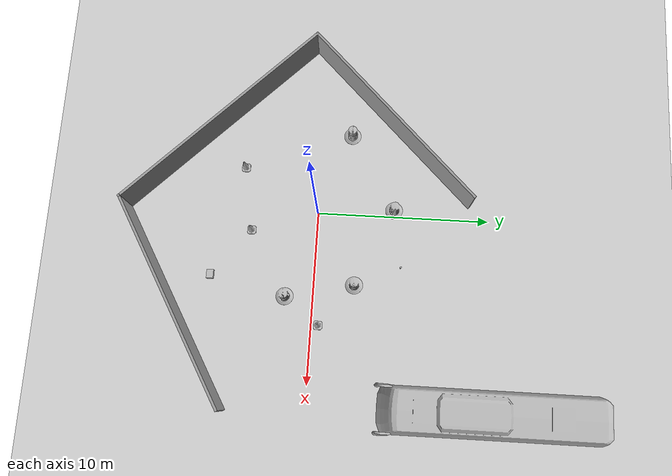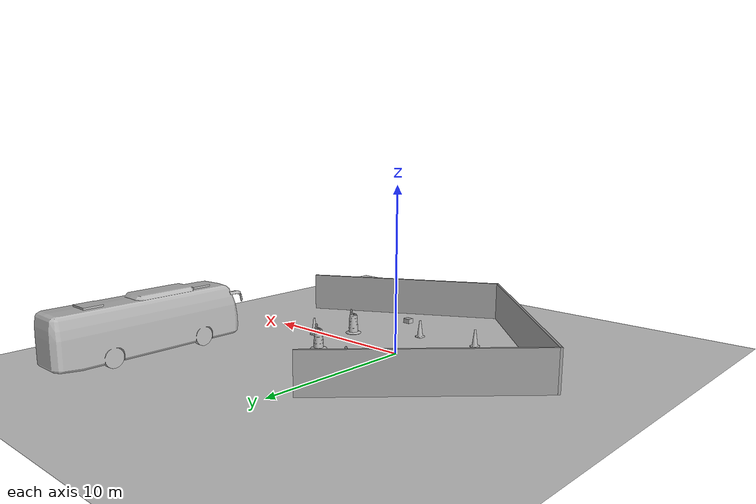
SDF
<sdf version="1.7">
 <world name="default">
  <light name="sun" type="directional">
   <pose>0 0 10 0 -0 0</pose>
   <diffuse>0.8 0.8 0.8 1</diffuse>
   <specular>0.2 0.2 0.2 1</specular>
   <attenuation>
    <range>1000</range>
    <constant>0.9</constant>
    <linear>0.01</linear>
    <quadratic>0.001</quadratic>
   </attenuation>
   <direction>-0.5 0.1 -0.9</direction>
   <spot><inner_angle>0</inner_angle><outer_angle>0</outer_angle><falloff>0</falloff></spot>
  </light>
  <model name="ground_plane">
   <static>1</static>
   <link name="link">
    <collision name="collision">
     <geometry><plane><normal>0 0 1</normal><size>100 100</size></plane></geometry>
     <surface>
      <contact><collide_bitmask>65535</collide_bitmask></contact>
      <friction><ode><mu>100</mu><mu2>50</mu2></ode></friction>
     </surface>
    </collision>
    <visual name="visual">
     <cast_shadows>0</cast_shadows>
     <geometry><plane><normal>0 0 1</normal><size>100 100</size></plane></geometry>
     <material>
      <script><uri>file://media/materials/scripts/gazebo.material</uri><name>Gazebo/Grey</name></script>
     </material>
    </visual>
   </link>
  </model>
  <gravity>0 0 -9.8</gravity>
  <magnetic_field>6e-06 2.3e-05 -4.2e-05</magnetic_field>
  <atmosphere type="adiabatic"/>
  <physics type="ode">
   <max_step_size>0.001</max_step_size>
   <real_time_factor>1</real_time_factor>
   <real_time_update_rate>1000</real_time_update_rate>
  </physics>
  <scene><ambient>0.4 0.4 0.4 1</ambient><background>0.7 0.7 0.7 1</background><shadows>1</shadows></scene>
  <audio><device>default</device></audio>
  <spherical_coordinates>
   <surface_model>EARTH_WGS84</surface_model>
   <latitude_deg>0</latitude_deg>
   <longitude_deg>0</longitude_deg>
   <elevation>0</elevation>
   <heading_deg>0</heading_deg>
  </spherical_coordinates>
  <model name="beer">
   <link name="link">
    <pose>0 0 0.115 0 -0 0</pose>
    <inertial>
     <mass>0.39</mass>
     <inertia><ixx>0.00058</ixx><ixy>0</ixy><ixz>0</ixz><iyy>0.00058</iyy><iyz>0</iyz><izz>0.00019</izz></inertia>
    </inertial>
    <collision name="collision">
     <geometry><cylinder><radius>0.055</radius><length>0.23</length></cylinder></geometry>
    </collision>
    <visual name="visual">
     <geometry><cylinder><radius>0.055</radius><length>0.23</length></cylinder></geometry>
     <material>
      <script>
       <uri>model://beer/materials/scripts</uri>
       <uri>model://beer/materials/textures</uri>
       <name>Beer/Diffuse</name>
      </script>
     </material>
    </visual>
   </link>
   <pose>3 5 -2e-06 1e-06 -0 -5e-06</pose>
  </model>
  <model name="bus">
   <static>1</static>
   <link name="link">
    <collision name="collision">
     <geometry><mesh><scale>0.01 0.01 0.01</scale><uri>model://bus/meshes/bus.obj</uri></mesh></geometry>
    </collision>
    <visual name="visual">
     <geometry><mesh><scale>0.01 0.01 0.01</scale><uri>model://bus/meshes/bus.obj</uri></mesh></geometry>
    </visual>
   </link>
   <pose>11 10 0 0 -0 0</pose>
  </model>
  <model name="cardboard_box">
   <pose>4 -6 0.149 0 -0 0</pose>
   <link name="link">
    <inertial>
     <mass>2</mass>
     <inertia>
      <ixx>0.0416667</ixx>
      <ixy>0</ixy>
      <ixz>0</ixz>
      <iyy>0.0566667</iyy>
      <iyz>0</iyz>
      <izz>0.0683333</izz>
     </inertia>
    </inertial>
    <collision name="collision">
     <geometry><box><size>0.5 0.4 0.3</size></box></geometry>
     <surface>
      <friction><ode><mu>1</mu><mu2>1</mu2></ode></friction>
      <contact><ode><kp>1e+07</kp><kd>1</kd><min_depth>0.001</min_depth><max_vel>0.1</max_vel></ode></contact>
     </surface>
    </collision>
    <visual name="visual">
     <pose>0 0 -0.15 0 -0 0</pose>
     <geometry>
      <mesh><uri>model://cardboard_box/meshes/cardboard_box.dae</uri><scale>1.25932 1.00745 0.755591</scale></mesh>
     </geometry>
    </visual>
   </link>
  </model>
  <model name="Construction Cone">
   <link name="link">
    <collision name="collision">
     <geometry>
      <mesh><scale>10 10 10</scale><uri>model://construction_cone/meshes/construction_cone.dae</uri></mesh>
     </geometry>
    </collision>
    <visual name="visual">
     <geometry>
      <mesh><scale>10 10 10</scale><uri>model://construction_cone/meshes/construction_cone.dae</uri></mesh>
     </geometry>
    </visual>
    <inertial>
     <inertia><ixx>1</ixx><ixy>0</ixy><ixz>0</ixz><iyy>1</iyy><iyz>0</iyz><izz>1</izz></inertia>
     <mass>1</mass>
    </inertial>
   </link>
   <pose>1.22748 -3.82993 -0 0 -1e-06 0</pose>
  </model>
  <model name="Construction Cone_0">
   <link name="link">
    <collision name="collision">
     <geometry>
      <mesh><scale>10 10 10</scale><uri>model://construction_cone/meshes/construction_cone.dae</uri></mesh>
     </geometry>
    </collision>
    <visual name="visual">
     <geometry>
      <mesh><scale>10 10 10</scale><uri>model://construction_cone/meshes/construction_cone.dae</uri></mesh>
     </geometry>
    </visual>
    <inertial>
     <inertia><ixx>1</ixx><ixy>0</ixy><ixz>0</ixz><iyy>1</iyy><iyz>0</iyz><izz>1</izz></inertia>
     <mass>1</mass>
    </inertial>
   </link>
   <pose>-2.54726 -4.47294 -0 0 -1e-06 0</pose>
  </model>
  <model name="Construction Barrel">
   <link name="link">
    <inertial>
     <pose>0 0 0.4 0 -0 0</pose>
     <mass>500</mass>
     <inertia><ixx>51.2096</ixx><iyy>51.2096</iyy><izz>25</izz><ixy>0</ixy><ixz>0</ixz><iyz>0</iyz></inertia>
    </inertial>
    <collision name="collision">
     <geometry><mesh><uri>model://construction_barrel/meshes/construction_barrel.dae</uri></mesh></geometry>
    </collision>
    <visual name="visual">
     <geometry><mesh><uri>model://construction_barrel/meshes/construction_barrel.dae</uri></mesh></geometry>
    </visual>
   </link>
   <pose>-0.393951 4.47326 0 0 0 -4e-06</pose>
  </model>
  <model name="Construction Barrel_0">
   <link name="link">
    <inertial>
     <pose>0 0 0.4 0 -0 0</pose>
     <mass>500</mass>
     <inertia><ixx>51.2096</ixx><iyy>51.2096</iyy><izz>25</izz><ixy>0</ixy><ixz>0</ixz><iyz>0</iyz></inertia>
    </inertial>
    <collision name="collision">
     <geometry><mesh><uri>model://construction_barrel/meshes/construction_barrel.dae</uri></mesh></geometry>
    </collision>
    <visual name="visual">
     <geometry><mesh><uri>model://construction_barrel/meshes/construction_barrel.dae</uri></mesh></geometry>
    </visual>
   </link>
   <pose>-4.88514 1.77696 0 0 0 -4e-06</pose>
  </model>
  <model name="Construction Barrel_1">
   <link name="link">
    <inertial>
     <pose>0 0 0.4 0 -0 0</pose>
     <mass>500</mass>
     <inertia><ixx>51.2096</ixx><iyy>51.2096</iyy><izz>25</izz><ixy>0</ixy><ixz>0</ixz><iyz>0</iyz></inertia>
    </inertial>
    <collision name="collision">
     <geometry><mesh><uri>model://construction_barrel/meshes/construction_barrel.dae</uri></mesh></geometry>
    </collision>
    <visual name="visual">
     <geometry><mesh><uri>model://construction_barrel/meshes/construction_barrel.dae</uri></mesh></geometry>
    </visual>
   </link>
   <pose>5.02847 -1.61779 0 0 0 -4e-06</pose>
  </model>
  <model name="Construction Barrel_2">
   <link name="link">
    <inertial>
     <pose>0 0 0.4 0 -0 0</pose>
     <mass>500</mass>
     <inertia><ixx>51.2096</ixx><iyy>51.2096</iyy><izz>25</izz><ixy>0</ixy><ixz>0</ixz><iyz>0</iyz></inertia>
    </inertial>
    <collision name="collision">
     <geometry><mesh><uri>model://construction_barrel/meshes/construction_barrel.dae</uri></mesh></geometry>
    </collision>
    <visual name="visual">
     <geometry><mesh><uri>model://construction_barrel/meshes/construction_barrel.dae</uri></mesh></geometry>
    </visual>
   </link>
   <pose>4.17493 2.35418 0 0 0 -4e-06</pose>
  </model>
  <model name="Construction Cone_1">
   <link name="link">
    <collision name="collision">
     <geometry>
      <mesh><scale>10 10 10</scale><uri>model://construction_cone/meshes/construction_cone.dae</uri></mesh>
     </geometry>
    </collision>
    <visual name="visual">
     <geometry>
      <mesh><scale>10 10 10</scale><uri>model://construction_cone/meshes/construction_cone.dae</uri></mesh>
     </geometry>
    </visual>
    <inertial>
     <inertia><ixx>1</ixx><ixy>0</ixy><ixz>0</ixz><iyy>1</iyy><iyz>0</iyz><izz>1</izz></inertia>
     <mass>1</mass>
    </inertial>
   </link>
   <pose>6.59624 0.410283 -0 0 -1e-06 0</pose>
  </model>
  <model name="sample">
   <pose>0.61811 -1.13627 0 0 -0 0</pose>
   <link name="Wall_20">
    <collision name="Wall_20_Collision">
     <geometry><box><size>13.5 0.15 2.5</size></box></geometry>
     <pose>0 0 1.25 0 -0 0</pose>
    </collision>
    <visual name="Wall_20_Visual">
     <pose>0 0 1.25 0 -0 0</pose>
     <geometry><box><size>13.5 0.15 2.5</size></box></geometry>
     <material>
      <script><uri>file://media/materials/scripts/gazebo.material</uri><name>Gazebo/Grey</name></script>
      <ambient>1 1 1 1</ambient>
     </material>
     <meta><layer>0</layer></meta>
    </visual>
    <pose>-6.20099 5.25027 0 0 -0 -2.35619</pose>
   </link>
   <link name="Wall_21">
    <collision name="Wall_21_Collision">
     <geometry><box><size>15 0.15 2.5</size></box></geometry>
     <pose>0 0 1.25 0 -0 0</pose>
    </collision>
    <visual name="Wall_21_Visual">
     <pose>0 0 1.25 0 -0 0</pose>
     <geometry><box><size>15 0.15 2.5</size></box></geometry>
     <material>
      <script><uri>file://media/materials/scripts/gazebo.material</uri><name>Gazebo/Grey</name></script>
      <ambient>1 1 1 1</ambient>
     </material>
     <meta><layer>0</layer></meta>
    </visual>
    <pose>-5.67066 -4.71994 0 0 -0 -0.785398</pose>
   </link>
   <link name="Wall_22">
    <collision name="Wall_22_Collision">
     <geometry><box><size>13.25 0.15 2.5</size></box></geometry>
     <pose>0 0 1.25 0 -0 0</pose>
    </collision>
    <visual name="Wall_22_Visual">
     <pose>0 0 1.25 0 -0 0</pose>
     <geometry><box><size>13.25 0.15 2.5</size></box></geometry>
     <material>
      <script><uri>file://media/materials/scripts/gazebo.material</uri><name>Gazebo/Grey</name></script>
      <ambient>1 1 1 1</ambient>
     </material>
     <meta><layer>0</layer></meta>
    </visual>
    <pose>5.25208 -6.6952 0 0 -0 0.523599</pose>
   </link>
   <static>1</static>
  </model>
 </world>
</sdf>
